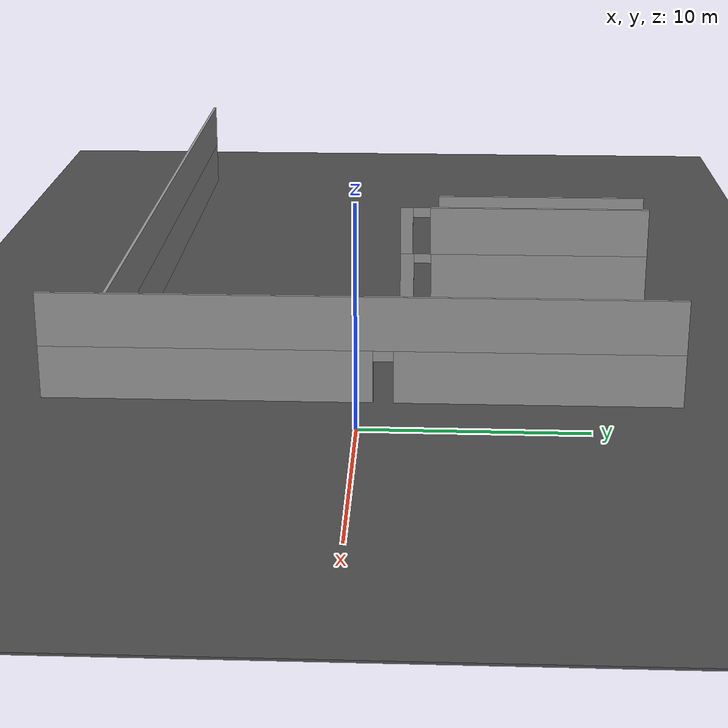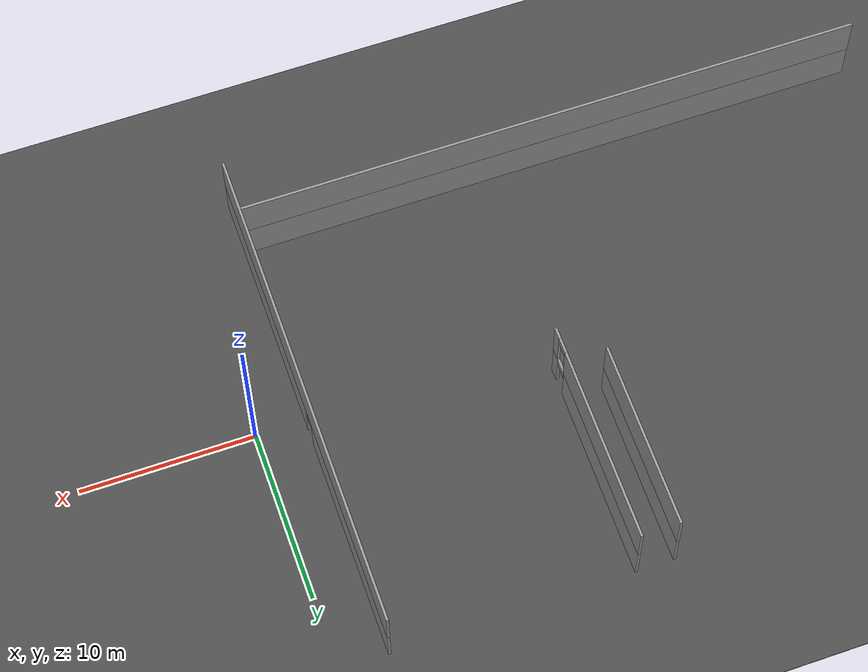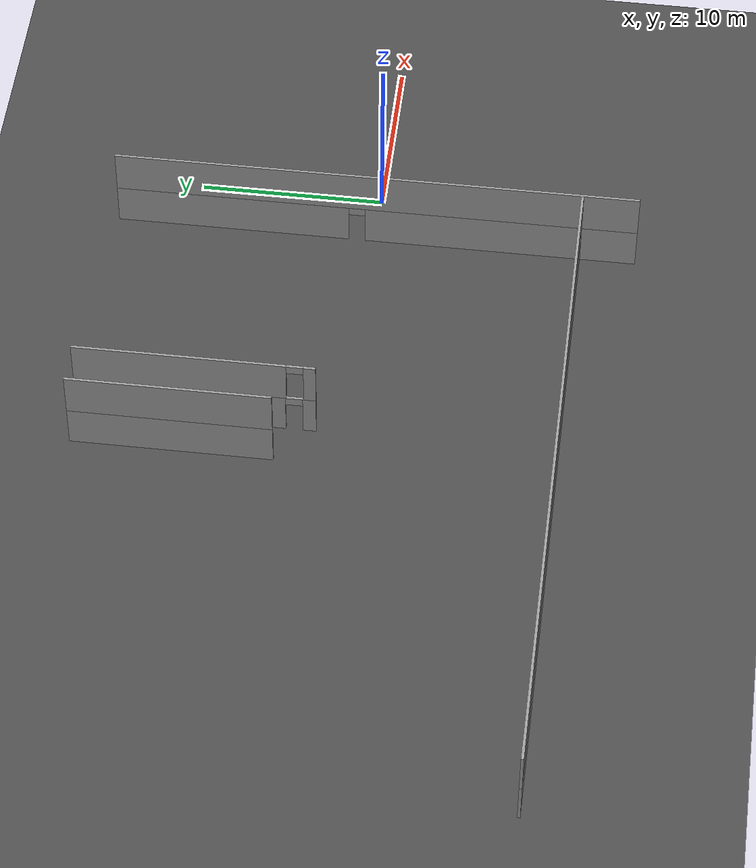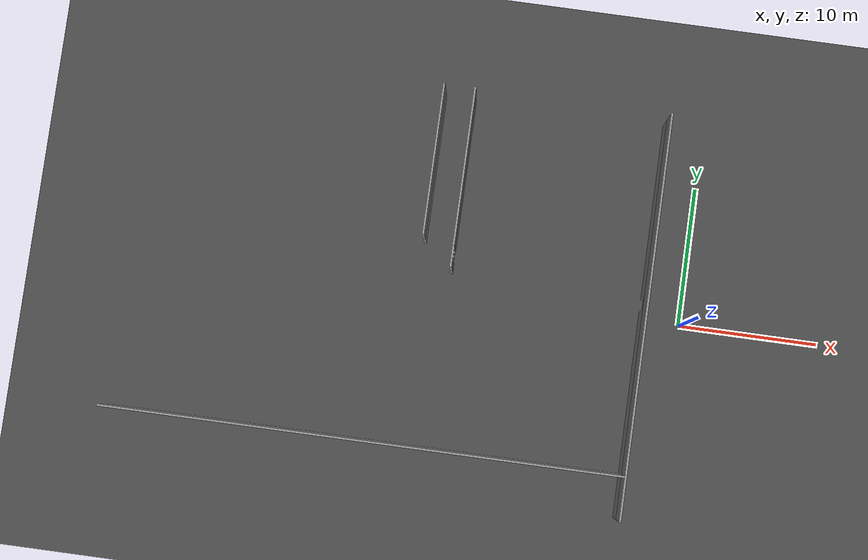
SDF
<sdf version="1.6">
 <world name="default">
  <model name="ground_plane">
   <static>1</static>
   <link name="link">
    <collision name="collision">
     <geometry><plane><normal>0 0 1</normal><size>100 100</size></plane></geometry>
     <surface>
      <contact><collide_bitmask>65535</collide_bitmask></contact>
      <friction><ode><mu>100</mu><mu2>50</mu2></ode></friction>
     </surface>
    </collision>
    <visual name="visual">
     <cast_shadows>0</cast_shadows>
     <geometry><plane><normal>0 0 1</normal><size>100 100</size></plane></geometry>
     <material>
      <script><uri>file://media/materials/scripts/gazebo.material</uri><name>Gazebo/Grey</name></script>
     </material>
    </visual>
   </link>
  </model>
  <model name="asphalt_plane">
   <static>1</static>
   <link name="link">
    <collision name="collision"><geometry><box><size>200 200 0.1</size></box></geometry></collision>
    <visual name="visual">
     <cast_shadows>0</cast_shadows>
     <geometry><box><size>200 200 0.1</size></box></geometry>
     <material>
      <script>
       <uri>model://asphalt_plane/materials/scripts</uri>
       <uri>model://asphalt_plane/materials/textures</uri>
       <name>vrc/asphalt</name>
      </script>
     </material>
    </visual>
   </link>
  </model>
  <model name="Biggest">
   <link name="Wall_104">
    <pose>8.84208 -11.1518 0 0 -0 0</pose>
    <visual name="Wall_104_Visual">
     <pose>0 0 1.25 0 -0 0</pose>
     <geometry><box><size>36.5 0.15 2.5</size></box></geometry>
     <material>
      <script><uri>file://media/materials/scripts/gazebo.material</uri><name>Gazebo/Grey</name></script>
      <ambient>1 1 1 1</ambient>
     </material>
     <meta><layer>0</layer></meta>
    </visual>
    <collision name="Wall_104_Collision">
     <pose>0 0 1.25 0 -0 0</pose>
     <geometry><box><size>36.5 0.15 2.5</size></box></geometry>
     <surface>
      <friction>
       <ode><mu>1</mu><mu2>1</mu2><fdir1>0 0 0</fdir1><slip1>0</slip1><slip2>0</slip2></ode>
       <torsional>
        <coefficient>1</coefficient>
        <patch_radius>0</patch_radius>
        <surface_radius>0</surface_radius>
        <use_patch_radius>1</use_patch_radius>
        <ode><slip>0</slip></ode>
       </torsional>
      </friction>
      <bounce><restitution_coefficient>0</restitution_coefficient><threshold>1e+06</threshold></bounce>
      <contact>
       <collide_without_contact>0</collide_without_contact>
       <collide_without_contact_bitmask>1</collide_without_contact_bitmask>
       <collide_bitmask>1</collide_bitmask>
       <ode>
        <soft_cfm>0</soft_cfm>
        <soft_erp>0.2</soft_erp>
        <kp>1e+13</kp>
        <kd>1</kd>
        <max_vel>0.01</max_vel>
        <min_depth>0</min_depth>
       </ode>
       <bullet>
        <split_impulse>1</split_impulse>
        <split_impulse_penetration_threshold>-0.01</split_impulse_penetration_threshold>
        <soft_cfm>0</soft_cfm>
        <soft_erp>0.2</soft_erp>
        <kp>1e+13</kp>
        <kd>1</kd>
       </bullet>
      </contact>
     </surface>
    </collision>
   </link>
   <link name="Wall_110">
    <pose>11.1298 8.86991 0 0 -0 1.5708</pose>
    <visual name="Wall_110_Visual">
     <pose>0 0 1.25 0 -0 0</pose>
     <geometry><box><size>10.75 0.15 2.5</size></box></geometry>
     <material>
      <script><uri>file://media/materials/scripts/gazebo.material</uri><name>Gazebo/Grey</name></script>
      <ambient>1 1 1 1</ambient>
     </material>
     <meta><layer>0</layer></meta>
    </visual>
    <collision name="Wall_110_Collision">
     <pose>0 0 1.25 0 -0 0</pose>
     <geometry><box><size>10.75 0.15 2.5</size></box></geometry>
     <surface>
      <friction>
       <ode><mu>1</mu><mu2>1</mu2><fdir1>0 0 0</fdir1><slip1>0</slip1><slip2>0</slip2></ode>
       <torsional>
        <coefficient>1</coefficient>
        <patch_radius>0</patch_radius>
        <surface_radius>0</surface_radius>
        <use_patch_radius>1</use_patch_radius>
        <ode><slip>0</slip></ode>
       </torsional>
      </friction>
      <bounce><restitution_coefficient>0</restitution_coefficient><threshold>1e+06</threshold></bounce>
      <contact>
       <collide_without_contact>0</collide_without_contact>
       <collide_without_contact_bitmask>1</collide_without_contact_bitmask>
       <collide_bitmask>1</collide_bitmask>
       <ode>
        <soft_cfm>0</soft_cfm>
        <soft_erp>0.2</soft_erp>
        <kp>1e+13</kp>
        <kd>1</kd>
        <max_vel>0.01</max_vel>
        <min_depth>0</min_depth>
       </ode>
       <bullet>
        <split_impulse>1</split_impulse>
        <split_impulse_penetration_threshold>-0.01</split_impulse_penetration_threshold>
        <soft_cfm>0</soft_cfm>
        <soft_erp>0.2</soft_erp>
        <kp>1e+13</kp>
        <kd>1</kd>
       </bullet>
      </contact>
     </surface>
    </collision>
   </link>
   <link name="Wall_116">
    <pose>13.3143 7.89097 0 0 0 -1.5708</pose>
    <visual name="Wall_116_Visual_0">
     <pose>-0.798632 0 1.25 0 -0 0</pose>
     <geometry><box><size>11.1527 0.15 2.5</size></box></geometry>
     <material>
      <script><uri>file://media/materials/scripts/gazebo.material</uri><name>Gazebo/Grey</name></script>
      <ambient>1 1 1 1</ambient>
     </material>
     <meta><layer>0</layer></meta>
    </visual>
    <visual name="Wall_116_Visual_1">
     <pose>6.02637 0 1.25 0 -0 0</pose>
     <geometry><box><size>0.697265 0.15 2.5</size></box></geometry>
     <material>
      <script><uri>file://media/materials/scripts/gazebo.material</uri><name>Gazebo/Grey</name></script>
      <ambient>1 1 1 1</ambient>
     </material>
     <meta><layer>0</layer></meta>
    </visual>
    <visual name="Wall_116_Visual_2">
     <pose>5.22774 0 2.25 0 -0 0</pose>
     <geometry><box><size>0.9 0.15 0.5</size></box></geometry>
     <material>
      <script><uri>file://media/materials/scripts/gazebo.material</uri><name>Gazebo/Grey</name></script>
      <ambient>1 1 1 1</ambient>
     </material>
     <meta><layer>0</layer></meta>
    </visual>
    <collision name="Wall_116_Collision_0">
     <pose>-0.798632 0 1.25 0 -0 0</pose>
     <geometry><box><size>11.1527 0.15 2.5</size></box></geometry>
     <surface>
      <friction>
       <ode><mu>1</mu><mu2>1</mu2><fdir1>0 0 0</fdir1><slip1>0</slip1><slip2>0</slip2></ode>
       <torsional>
        <coefficient>1</coefficient>
        <patch_radius>0</patch_radius>
        <surface_radius>0</surface_radius>
        <use_patch_radius>1</use_patch_radius>
        <ode><slip>0</slip></ode>
       </torsional>
      </friction>
      <bounce><restitution_coefficient>0</restitution_coefficient><threshold>1e+06</threshold></bounce>
      <contact>
       <collide_without_contact>0</collide_without_contact>
       <collide_without_contact_bitmask>1</collide_without_contact_bitmask>
       <collide_bitmask>1</collide_bitmask>
       <ode>
        <soft_cfm>0</soft_cfm>
        <soft_erp>0.2</soft_erp>
        <kp>1e+13</kp>
        <kd>1</kd>
        <max_vel>0.01</max_vel>
        <min_depth>0</min_depth>
       </ode>
       <bullet>
        <split_impulse>1</split_impulse>
        <split_impulse_penetration_threshold>-0.01</split_impulse_penetration_threshold>
        <soft_cfm>0</soft_cfm>
        <soft_erp>0.2</soft_erp>
        <kp>1e+13</kp>
        <kd>1</kd>
       </bullet>
      </contact>
     </surface>
    </collision>
    <collision name="Wall_116_Collision_1">
     <pose>6.02637 0 1.25 0 -0 0</pose>
     <geometry><box><size>0.697265 0.15 2.5</size></box></geometry>
     <surface>
      <friction>
       <ode><mu>1</mu><mu2>1</mu2><fdir1>0 0 0</fdir1><slip1>0</slip1><slip2>0</slip2></ode>
       <torsional>
        <coefficient>1</coefficient>
        <patch_radius>0</patch_radius>
        <surface_radius>0</surface_radius>
        <use_patch_radius>1</use_patch_radius>
        <ode><slip>0</slip></ode>
       </torsional>
      </friction>
      <bounce><restitution_coefficient>0</restitution_coefficient><threshold>1e+06</threshold></bounce>
      <contact>
       <collide_without_contact>0</collide_without_contact>
       <collide_without_contact_bitmask>1</collide_without_contact_bitmask>
       <collide_bitmask>1</collide_bitmask>
       <ode>
        <soft_cfm>0</soft_cfm>
        <soft_erp>0.2</soft_erp>
        <kp>1e+13</kp>
        <kd>1</kd>
        <max_vel>0.01</max_vel>
        <min_depth>0</min_depth>
       </ode>
       <bullet>
        <split_impulse>1</split_impulse>
        <split_impulse_penetration_threshold>-0.01</split_impulse_penetration_threshold>
        <soft_cfm>0</soft_cfm>
        <soft_erp>0.2</soft_erp>
        <kp>1e+13</kp>
        <kd>1</kd>
       </bullet>
      </contact>
     </surface>
    </collision>
    <collision name="Wall_116_Collision_2">
     <pose>5.22774 0 2.25 0 -0 0</pose>
     <geometry><box><size>0.9 0.15 0.5</size></box></geometry>
     <surface>
      <friction>
       <ode><mu>1</mu><mu2>1</mu2><fdir1>0 0 0</fdir1><slip1>0</slip1><slip2>0</slip2></ode>
       <torsional>
        <coefficient>1</coefficient>
        <patch_radius>0</patch_radius>
        <surface_radius>0</surface_radius>
        <use_patch_radius>1</use_patch_radius>
        <ode><slip>0</slip></ode>
       </torsional>
      </friction>
      <bounce><restitution_coefficient>0</restitution_coefficient><threshold>1e+06</threshold></bounce>
      <contact>
       <collide_without_contact>0</collide_without_contact>
       <collide_without_contact_bitmask>1</collide_without_contact_bitmask>
       <collide_bitmask>1</collide_bitmask>
       <ode>
        <soft_cfm>0</soft_cfm>
        <soft_erp>0.2</soft_erp>
        <kp>1e+13</kp>
        <kd>1</kd>
        <max_vel>0.01</max_vel>
        <min_depth>0</min_depth>
       </ode>
       <bullet>
        <split_impulse>1</split_impulse>
        <split_impulse_penetration_threshold>-0.01</split_impulse_penetration_threshold>
        <soft_cfm>0</soft_cfm>
        <soft_erp>0.2</soft_erp>
        <kp>1e+13</kp>
        <kd>1</kd>
       </bullet>
      </contact>
     </surface>
    </collision>
   </link>
   <link name="Wall_119">
    <pose>27.1536 0.010278 2.5 0 0 -1.5708</pose>
    <visual name="Wall_119_Visual">
     <pose>0 0 1.25 0 -0 0</pose>
     <geometry><box><size>28.5 0.15 2.5</size></box></geometry>
     <material>
      <script><uri>file://media/materials/scripts/gazebo.material</uri><name>Gazebo/Grey</name></script>
      <ambient>1 1 1 1</ambient>
     </material>
     <meta><layer>1</layer></meta>
    </visual>
    <collision name="Wall_119_Collision">
     <pose>0 0 1.25 0 -0 0</pose>
     <geometry><box><size>28.5 0.15 2.5</size></box></geometry>
     <surface>
      <friction>
       <ode><mu>1</mu><mu2>1</mu2><fdir1>0 0 0</fdir1><slip1>0</slip1><slip2>0</slip2></ode>
       <torsional>
        <coefficient>1</coefficient>
        <patch_radius>0</patch_radius>
        <surface_radius>0</surface_radius>
        <use_patch_radius>1</use_patch_radius>
        <ode><slip>0</slip></ode>
       </torsional>
      </friction>
      <bounce><restitution_coefficient>0</restitution_coefficient><threshold>1e+06</threshold></bounce>
      <contact>
       <collide_without_contact>0</collide_without_contact>
       <collide_without_contact_bitmask>1</collide_without_contact_bitmask>
       <collide_bitmask>1</collide_bitmask>
       <ode>
        <soft_cfm>0</soft_cfm>
        <soft_erp>0.2</soft_erp>
        <kp>1e+13</kp>
        <kd>1</kd>
        <max_vel>0.01</max_vel>
        <min_depth>0</min_depth>
       </ode>
       <bullet>
        <split_impulse>1</split_impulse>
        <split_impulse_penetration_threshold>-0.01</split_impulse_penetration_threshold>
        <soft_cfm>0</soft_cfm>
        <soft_erp>0.2</soft_erp>
        <kp>1e+13</kp>
        <kd>1</kd>
       </bullet>
      </contact>
     </surface>
    </collision>
   </link>
   <link name="Wall_130">
    <pose>8.84208 -11.1518 2.5 0 -0 0</pose>
    <visual name="Wall_130_Visual">
     <pose>0 0 1.25 0 -0 0</pose>
     <geometry><box><size>36.5 0.15 2.5</size></box></geometry>
     <material>
      <script><uri>file://media/materials/scripts/gazebo.material</uri><name>Gazebo/Grey</name></script>
      <ambient>1 1 1 1</ambient>
     </material>
     <meta><layer>1</layer></meta>
    </visual>
    <collision name="Wall_130_Collision">
     <pose>0 0 1.25 0 -0 0</pose>
     <geometry><box><size>36.5 0.15 2.5</size></box></geometry>
     <surface>
      <friction>
       <ode><mu>1</mu><mu2>1</mu2><fdir1>0 0 0</fdir1><slip1>0</slip1><slip2>0</slip2></ode>
       <torsional>
        <coefficient>1</coefficient>
        <patch_radius>0</patch_radius>
        <surface_radius>0</surface_radius>
        <use_patch_radius>1</use_patch_radius>
        <ode><slip>0</slip></ode>
       </torsional>
      </friction>
      <bounce><restitution_coefficient>0</restitution_coefficient><threshold>1e+06</threshold></bounce>
      <contact>
       <collide_without_contact>0</collide_without_contact>
       <collide_without_contact_bitmask>1</collide_without_contact_bitmask>
       <collide_bitmask>1</collide_bitmask>
       <ode>
        <soft_cfm>0</soft_cfm>
        <soft_erp>0.2</soft_erp>
        <kp>1e+13</kp>
        <kd>1</kd>
        <max_vel>0.01</max_vel>
        <min_depth>0</min_depth>
       </ode>
       <bullet>
        <split_impulse>1</split_impulse>
        <split_impulse_penetration_threshold>-0.01</split_impulse_penetration_threshold>
        <soft_cfm>0</soft_cfm>
        <soft_erp>0.2</soft_erp>
        <kp>1e+13</kp>
        <kd>1</kd>
       </bullet>
      </contact>
     </surface>
    </collision>
   </link>
   <link name="Wall_134">
    <pose>11.1298 8.86991 2.5 0 -0 1.5708</pose>
    <visual name="Wall_134_Visual">
     <pose>0 0 1.25 0 -0 0</pose>
     <geometry><box><size>10.75 0.15 2.5</size></box></geometry>
     <material>
      <script><uri>file://media/materials/scripts/gazebo.material</uri><name>Gazebo/Grey</name></script>
      <ambient>1 1 1 1</ambient>
     </material>
     <meta><layer>1</layer></meta>
    </visual>
    <collision name="Wall_134_Collision">
     <pose>0 0 1.25 0 -0 0</pose>
     <geometry><box><size>10.75 0.15 2.5</size></box></geometry>
     <surface>
      <friction>
       <ode><mu>1</mu><mu2>1</mu2><fdir1>0 0 0</fdir1><slip1>0</slip1><slip2>0</slip2></ode>
       <torsional>
        <coefficient>1</coefficient>
        <patch_radius>0</patch_radius>
        <surface_radius>0</surface_radius>
        <use_patch_radius>1</use_patch_radius>
        <ode><slip>0</slip></ode>
       </torsional>
      </friction>
      <bounce><restitution_coefficient>0</restitution_coefficient><threshold>1e+06</threshold></bounce>
      <contact>
       <collide_without_contact>0</collide_without_contact>
       <collide_without_contact_bitmask>1</collide_without_contact_bitmask>
       <collide_bitmask>1</collide_bitmask>
       <ode>
        <soft_cfm>0</soft_cfm>
        <soft_erp>0.2</soft_erp>
        <kp>1e+13</kp>
        <kd>1</kd>
        <max_vel>0.01</max_vel>
        <min_depth>0</min_depth>
       </ode>
       <bullet>
        <split_impulse>1</split_impulse>
        <split_impulse_penetration_threshold>-0.01</split_impulse_penetration_threshold>
        <soft_cfm>0</soft_cfm>
        <soft_erp>0.2</soft_erp>
        <kp>1e+13</kp>
        <kd>1</kd>
       </bullet>
      </contact>
     </surface>
    </collision>
   </link>
   <link name="Wall_135">
    <pose>13.3143 7.89097 2.5 0 0 -1.5708</pose>
    <visual name="Wall_135_Visual_0">
     <pose>-0.768708 0 1.25 0 -0 0</pose>
     <geometry><box><size>11.2126 0.15 2.5</size></box></geometry>
     <material>
      <script><uri>file://media/materials/scripts/gazebo.material</uri><name>Gazebo/Grey</name></script>
      <ambient>1 1 1 1</ambient>
     </material>
     <meta><layer>1</layer></meta>
    </visual>
    <visual name="Wall_135_Visual_1">
     <pose>6.05629 0 1.25 0 -0 0</pose>
     <geometry><box><size>0.637416 0.15 2.5</size></box></geometry>
     <material>
      <script><uri>file://media/materials/scripts/gazebo.material</uri><name>Gazebo/Grey</name></script>
      <ambient>1 1 1 1</ambient>
     </material>
     <meta><layer>1</layer></meta>
    </visual>
    <visual name="Wall_135_Visual_2">
     <pose>5.28758 0 2.25 0 -0 0</pose>
     <geometry><box><size>0.9 0.15 0.5</size></box></geometry>
     <material>
      <script><uri>file://media/materials/scripts/gazebo.material</uri><name>Gazebo/Grey</name></script>
      <ambient>1 1 1 1</ambient>
     </material>
     <meta><layer>1</layer></meta>
    </visual>
    <collision name="Wall_135_Collision_0">
     <pose>-0.768708 0 1.25 0 -0 0</pose>
     <geometry><box><size>11.2126 0.15 2.5</size></box></geometry>
     <surface>
      <friction>
       <ode><mu>1</mu><mu2>1</mu2><fdir1>0 0 0</fdir1><slip1>0</slip1><slip2>0</slip2></ode>
       <torsional>
        <coefficient>1</coefficient>
        <patch_radius>0</patch_radius>
        <surface_radius>0</surface_radius>
        <use_patch_radius>1</use_patch_radius>
        <ode><slip>0</slip></ode>
       </torsional>
      </friction>
      <bounce><restitution_coefficient>0</restitution_coefficient><threshold>1e+06</threshold></bounce>
      <contact>
       <collide_without_contact>0</collide_without_contact>
       <collide_without_contact_bitmask>1</collide_without_contact_bitmask>
       <collide_bitmask>1</collide_bitmask>
       <ode>
        <soft_cfm>0</soft_cfm>
        <soft_erp>0.2</soft_erp>
        <kp>1e+13</kp>
        <kd>1</kd>
        <max_vel>0.01</max_vel>
        <min_depth>0</min_depth>
       </ode>
       <bullet>
        <split_impulse>1</split_impulse>
        <split_impulse_penetration_threshold>-0.01</split_impulse_penetration_threshold>
        <soft_cfm>0</soft_cfm>
        <soft_erp>0.2</soft_erp>
        <kp>1e+13</kp>
        <kd>1</kd>
       </bullet>
      </contact>
     </surface>
    </collision>
    <collision name="Wall_135_Collision_1">
     <pose>6.05629 0 1.25 0 -0 0</pose>
     <geometry><box><size>0.637416 0.15 2.5</size></box></geometry>
     <surface>
      <friction>
       <ode><mu>1</mu><mu2>1</mu2><fdir1>0 0 0</fdir1><slip1>0</slip1><slip2>0</slip2></ode>
       <torsional>
        <coefficient>1</coefficient>
        <patch_radius>0</patch_radius>
        <surface_radius>0</surface_radius>
        <use_patch_radius>1</use_patch_radius>
        <ode><slip>0</slip></ode>
       </torsional>
      </friction>
      <bounce><restitution_coefficient>0</restitution_coefficient><threshold>1e+06</threshold></bounce>
      <contact>
       <collide_without_contact>0</collide_without_contact>
       <collide_without_contact_bitmask>1</collide_without_contact_bitmask>
       <collide_bitmask>1</collide_bitmask>
       <ode>
        <soft_cfm>0</soft_cfm>
        <soft_erp>0.2</soft_erp>
        <kp>1e+13</kp>
        <kd>1</kd>
        <max_vel>0.01</max_vel>
        <min_depth>0</min_depth>
       </ode>
       <bullet>
        <split_impulse>1</split_impulse>
        <split_impulse_penetration_threshold>-0.01</split_impulse_penetration_threshold>
        <soft_cfm>0</soft_cfm>
        <soft_erp>0.2</soft_erp>
        <kp>1e+13</kp>
        <kd>1</kd>
       </bullet>
      </contact>
     </surface>
    </collision>
    <collision name="Wall_135_Collision_2">
     <pose>5.28758 0 2.25 0 -0 0</pose>
     <geometry><box><size>0.9 0.15 0.5</size></box></geometry>
     <surface>
      <friction>
       <ode><mu>1</mu><mu2>1</mu2><fdir1>0 0 0</fdir1><slip1>0</slip1><slip2>0</slip2></ode>
       <torsional>
        <coefficient>1</coefficient>
        <patch_radius>0</patch_radius>
        <surface_radius>0</surface_radius>
        <use_patch_radius>1</use_patch_radius>
        <ode><slip>0</slip></ode>
       </torsional>
      </friction>
      <bounce><restitution_coefficient>0</restitution_coefficient><threshold>1e+06</threshold></bounce>
      <contact>
       <collide_without_contact>0</collide_without_contact>
       <collide_without_contact_bitmask>1</collide_without_contact_bitmask>
       <collide_bitmask>1</collide_bitmask>
       <ode>
        <soft_cfm>0</soft_cfm>
        <soft_erp>0.2</soft_erp>
        <kp>1e+13</kp>
        <kd>1</kd>
        <max_vel>0.01</max_vel>
        <min_depth>0</min_depth>
       </ode>
       <bullet>
        <split_impulse>1</split_impulse>
        <split_impulse_penetration_threshold>-0.01</split_impulse_penetration_threshold>
        <soft_cfm>0</soft_cfm>
        <soft_erp>0.2</soft_erp>
        <kp>1e+13</kp>
        <kd>1</kd>
       </bullet>
      </contact>
     </surface>
    </collision>
   </link>
   <link name="Wall_84">
    <pose>27.1536 0.010278 0 0 0 -1.5708</pose>
    <visual name="Wall_84_Visual_0">
     <pose>-7.86931 0 1.25 0 -0 0</pose>
     <geometry><box><size>12.7614 0.15 2.5</size></box></geometry>
     <material>
      <script><uri>file://media/materials/scripts/gazebo.material</uri><name>Gazebo/Grey</name></script>
      <ambient>1 1 1 1</ambient>
     </material>
     <meta><layer>0</layer></meta>
    </visual>
    <visual name="Wall_84_Visual_1">
     <pose>6.83069 0 1.25 0 -0 0</pose>
     <geometry><box><size>14.8386 0.15 2.5</size></box></geometry>
     <material>
      <script><uri>file://media/materials/scripts/gazebo.material</uri><name>Gazebo/Grey</name></script>
      <ambient>1 1 1 1</ambient>
     </material>
     <meta><layer>0</layer></meta>
    </visual>
    <visual name="Wall_84_Visual_2">
     <pose>-1.03862 0 2.25 0 -0 0</pose>
     <geometry><box><size>0.9 0.15 0.5</size></box></geometry>
     <material>
      <script><uri>file://media/materials/scripts/gazebo.material</uri><name>Gazebo/Grey</name></script>
      <ambient>1 1 1 1</ambient>
     </material>
     <meta><layer>0</layer></meta>
    </visual>
    <collision name="Wall_84_Collision_1">
     <pose>6.83069 0 1.25 0 -0 0</pose>
     <geometry><box><size>14.8386 0.15 2.5</size></box></geometry>
     <surface>
      <friction>
       <ode><mu>1</mu><mu2>1</mu2><fdir1>0 0 0</fdir1><slip1>0</slip1><slip2>0</slip2></ode>
       <torsional>
        <coefficient>1</coefficient>
        <patch_radius>0</patch_radius>
        <surface_radius>0</surface_radius>
        <use_patch_radius>1</use_patch_radius>
        <ode><slip>0</slip></ode>
       </torsional>
      </friction>
      <bounce><restitution_coefficient>0</restitution_coefficient><threshold>1e+06</threshold></bounce>
      <contact>
       <collide_without_contact>0</collide_without_contact>
       <collide_without_contact_bitmask>1</collide_without_contact_bitmask>
       <collide_bitmask>1</collide_bitmask>
       <ode>
        <soft_cfm>0</soft_cfm>
        <soft_erp>0.2</soft_erp>
        <kp>1e+13</kp>
        <kd>1</kd>
        <max_vel>0.01</max_vel>
        <min_depth>0</min_depth>
       </ode>
       <bullet>
        <split_impulse>1</split_impulse>
        <split_impulse_penetration_threshold>-0.01</split_impulse_penetration_threshold>
        <soft_cfm>0</soft_cfm>
        <soft_erp>0.2</soft_erp>
        <kp>1e+13</kp>
        <kd>1</kd>
       </bullet>
      </contact>
     </surface>
    </collision>
    <collision name="Wall_84_Collision_0">
     <pose>-7.86931 0 1.25 0 -0 0</pose>
     <geometry><box><size>12.7614 0.15 2.5</size></box></geometry>
     <surface>
      <friction>
       <ode><mu>1</mu><mu2>1</mu2><fdir1>0 0 0</fdir1><slip1>0</slip1><slip2>0</slip2></ode>
       <torsional>
        <coefficient>1</coefficient>
        <patch_radius>0</patch_radius>
        <surface_radius>0</surface_radius>
        <use_patch_radius>1</use_patch_radius>
        <ode><slip>0</slip></ode>
       </torsional>
      </friction>
      <bounce><restitution_coefficient>0</restitution_coefficient><threshold>1e+06</threshold></bounce>
      <contact>
       <collide_without_contact>0</collide_without_contact>
       <collide_without_contact_bitmask>1</collide_without_contact_bitmask>
       <collide_bitmask>1</collide_bitmask>
       <ode>
        <soft_cfm>0</soft_cfm>
        <soft_erp>0.2</soft_erp>
        <kp>1e+13</kp>
        <kd>1</kd>
        <max_vel>0.01</max_vel>
        <min_depth>0</min_depth>
       </ode>
       <bullet>
        <split_impulse>1</split_impulse>
        <split_impulse_penetration_threshold>-0.01</split_impulse_penetration_threshold>
        <soft_cfm>0</soft_cfm>
        <soft_erp>0.2</soft_erp>
        <kp>1e+13</kp>
        <kd>1</kd>
       </bullet>
      </contact>
     </surface>
    </collision>
    <collision name="Wall_84_Collision_2">
     <pose>-1.03862 0 2.25 0 -0 0</pose>
     <geometry><box><size>0.9 0.15 0.5</size></box></geometry>
     <surface>
      <friction>
       <ode><mu>1</mu><mu2>1</mu2><fdir1>0 0 0</fdir1><slip1>0</slip1><slip2>0</slip2></ode>
       <torsional>
        <coefficient>1</coefficient>
        <patch_radius>0</patch_radius>
        <surface_radius>0</surface_radius>
        <use_patch_radius>1</use_patch_radius>
        <ode><slip>0</slip></ode>
       </torsional>
      </friction>
      <bounce><restitution_coefficient>0</restitution_coefficient><threshold>1e+06</threshold></bounce>
      <contact>
       <collide_without_contact>0</collide_without_contact>
       <collide_without_contact_bitmask>1</collide_without_contact_bitmask>
       <collide_bitmask>1</collide_bitmask>
       <ode>
        <soft_cfm>0</soft_cfm>
        <soft_erp>0.2</soft_erp>
        <kp>1e+13</kp>
        <kd>1</kd>
        <max_vel>0.01</max_vel>
        <min_depth>0</min_depth>
       </ode>
       <bullet>
        <split_impulse>1</split_impulse>
        <split_impulse_penetration_threshold>-0.01</split_impulse_penetration_threshold>
        <soft_cfm>0</soft_cfm>
        <soft_erp>0.2</soft_erp>
        <kp>1e+13</kp>
        <kd>1</kd>
       </bullet>
      </contact>
     </surface>
    </collision>
   </link>
   <static>1</static>
   <pose>-30.023 0.02833 0 0 -0 0</pose>
  </model>
 </world>
</sdf>
